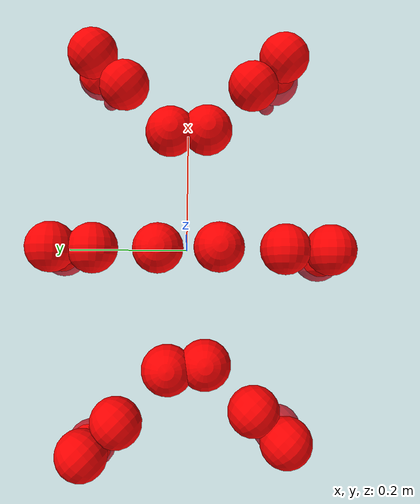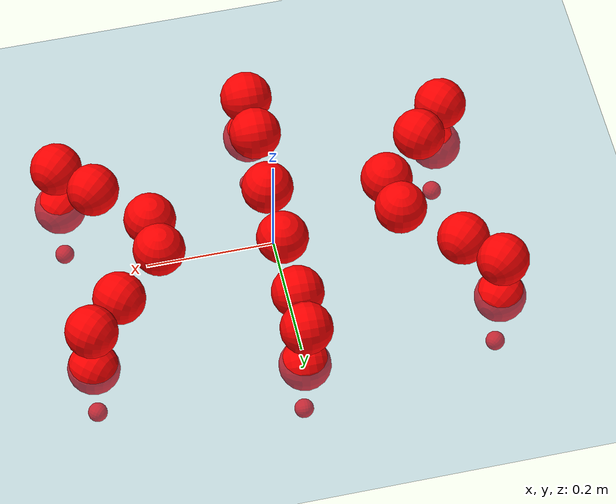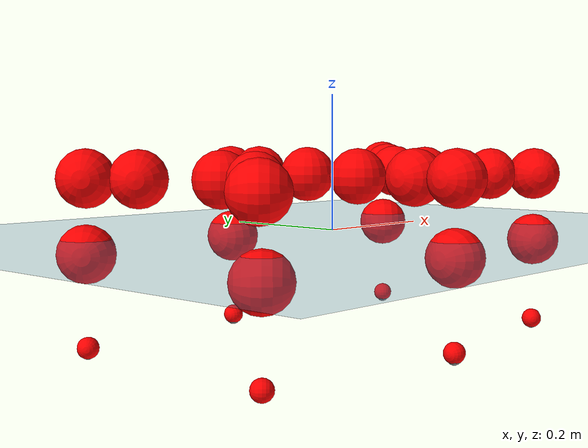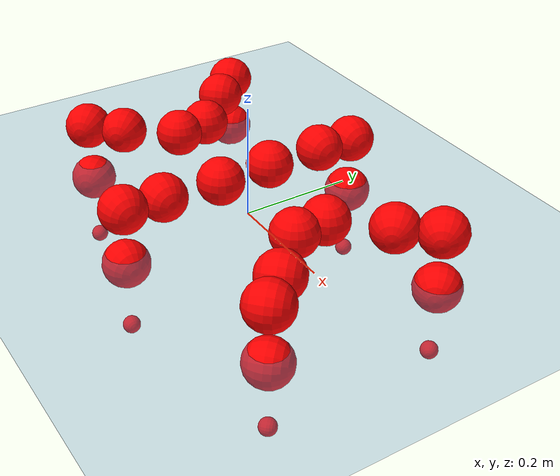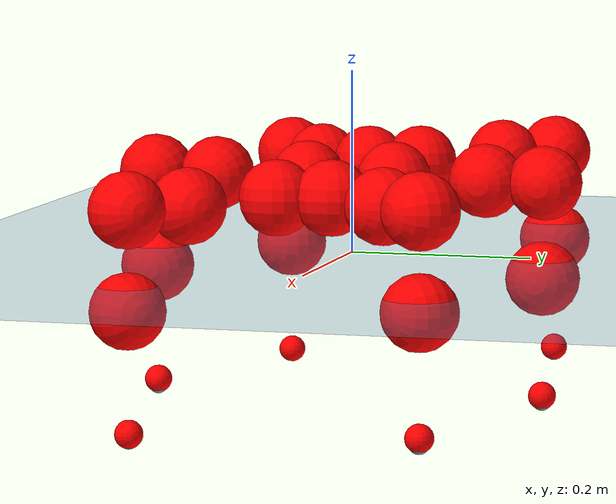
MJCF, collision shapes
<mujoco model="Golem">
  <compiler angle="radian" assetdir="assets" balanceinertia="true" inertiafromgeom="false"/>

  <option timestep="0.005" density="1.2" viscosity="2e-05"/>

  <size nkey="1"/>

  <visual>
    <quality shadowsize="8192"/>
    <map shadowclip="0.5"/>
  </visual>

  <default>
    <default class="/">
      <joint armature="0.01" damping="0.01" frictionloss="0.01"/>
      <geom contype="0" conaffinity="0" group="1" solref="-1000 -80"/>
      <site size="0.01 0.005 0.005" group="5"/>
      <general forcelimited="true" biastype="affine" gainprm="25" biasprm="0 -25 -0.5"/>
      <default class="visual">
        <geom type="mesh" group="2"/>
      </default>
      <default class="collision">
        <geom group="3"/>
      </default>
      <default class="foot">
        <geom size="0.01 0 0" condim="6" group="4" priority="1" solimp="0.015 1 0.01"/>
      </default>
      <default class="reward_collision_sphere">
        <geom group="5" rgba="1 0 0 1"/>
      </default>
    </default>
  </default>

  <asset>
    <texture type="skybox" colorspace="auto" name="//unnamed_texture_0" builtin="gradient" rgb1="0.95 0.95 0.95" rgb2="0.95 0.95 0.95" width="100" height="600"/>
    <texture type="2d" colorspace="auto" name="texplane" builtin="checker" rgb1="0.345 0.575 0.748" rgb2="0.345 0.575 0.748" markrgb="1 1 1" width="512" height="512"/>
    <material name="MatPlane" class="/" texture="texplane" texuniform="true" texrepeat="2 2" specular="0.9"/>
    <mesh name="body" class="/" file="body.stl" scale="0.001 0.001 0.001"/>
    <mesh name="coxa" class="/" file="coxa.stl" scale="0.001 0.001 0.001"/>
    <mesh name="femur" class="/" file="femur.stl" scale="0.001 0.001 0.001"/>
    <mesh name="tibia" class="/" file="tibia.stl" scale="0.001 0.001 0.001"/>
    <mesh name="tarsus" class="/" file="tarsus.stl" scale="0.001 0.001 0.001"/>
  </asset>

  <worldbody>
    <geom name="floor" class="/" size="100 100 0.125" type="plane" group="0" material="MatPlane"/>
    <light name="toplight_shadow" class="/" pos="0 0 5" dir="0.0990148 0.0990148 -0.990148" type="directional" ambient="0.04 0.04 0.04" diffuse="0.55 0.55 0.55" specular="0.12 0.12 0.12"/>
    <light name="toplight_fill" class="/" pos="0 0 5" dir="0.0990148 0.0990148 -0.990148" type="directional" castshadow="false" ambient="0.04 0.04 0.04" diffuse="0.3 0.3 0.3" specular="0.08 0.08 0.08"/>
    <body name="trunk" pos="-0.00267833 -0.000230266 0.00134591" quat="1 0.000379282 -0.000210271 5.32871e-05">
      <inertial pos="0.00290472 -0.00016362 -0.00184488" quat="0.999972 -0.00528115 0.00526007 -0.000555747" mass="3.95069" diaginertia="0.0253253 0.00112027 0.0268326"/>
      <joint name="//unnamed_joint_0" type="free"/>
      <geom name="//unnamed_geom_1" class="/" pos="0 0 0.0774931" quat="1 0 0 0" type="mesh" rgba="0.9 0.9 0.9 1" mesh="body"/>
      <site name="imu" class="/" pos="0.155258 -0.00116407 0.132915" size="0.0101774"/>
      <camera name="track" class="/" pos="0 -1.28678 0" quat="0.707107 0.707107 0 0" mode="trackcom"/>
      <camera name="ego_camera" class="/" pos="0.15587 0 0.121083" quat="-0.5 -0.5 0.5 0.5"/>
      <body name="coxa_RR" pos="-0.209161 -0.0547932 0.0776163" quat="0.382984 0.000137271 -0.000119503 -0.923755">
        <inertial pos="0.000829445 0.00112833 0.000680509" quat="0.999961 -0.00139784 0.00872011 -0.00069726" mass="0.217231" diaginertia="0.0249978 0.0011367 0.0276955"/>
        <joint name="coxa_joint_RR" class="/" pos="0 0 0" axis="0.0141633 -0.00128374 -0.999899" stiffness="0.00164383" range="-3.13774 3.10247" armature="0.00893589" damping="0.00580461" frictionloss="0.0105296"/>
        <geom name="//unnamed_geom_2" class="/" type="mesh" rgba="0.2 0.2 0.2 1" mesh="coxa"/>
        <geom name="//unnamed_geom_3" class="reward_collision_sphere" size="0.0407096" pos="-0.0359701 0 0"/>
        <body name="femur_RR" pos="0.0677193 0.00378676 -0.00611777" quat="0.49951 -0.500914 0.49974 0.499835">
          <inertial pos="-0.00228895 0.00211468 -0.00251528" quat="0.999995 0.00298017 2.45938e-05 0.000437035" mass="0.213194" diaginertia="0.0249054 0.00109042 0.0258662"/>
          <joint name="femur_joint_RR" class="/" pos="0 0 0" axis="-0.000242212 5.76702e-05 -1" range="-3.09528 3.1478" armature="0.00930984" damping="0.0235795" frictionloss="0.010988"/>
          <geom name="//unnamed_geom_4" class="/" type="mesh" rgba="0.9 0.9 0.9 1" mesh="femur"/>
          <geom name="//unnamed_geom_5" class="reward_collision_sphere" size="0.0407096"/>
          <body name="tibia_RR" pos="-0.00176824 -0.0679905 0.00187364" quat="0.000312711 0.999999 -0.000514005 -0.000980578">
            <inertial pos="-0.000191824 -0.00182738 0.000168963" quat="0.99998 -0.00303246 0.002534 0.00492594" mass="0.211257" diaginertia="0.0239825 0.00108195 0.0252702"/>
            <joint name="tibia_joint_RR" class="/" pos="0 0 0" axis="0.0114205 0.00428623 0.999926" stiffness="0.00965694" range="-3.11993 3.08313" armature="0.00953754" damping="0.00331894" frictionloss="0.010325"/>
            <geom name="//unnamed_geom_6" class="/" type="mesh" rgba="0.2 0.2 0.2 1" mesh="tibia"/>
            <geom name="//unnamed_geom_7" class="reward_collision_sphere" size="0.0407096"/>
            <body name="tarsus_RR" pos="0.106705 -0.00251889 -0.00320873" quat="0.999999 -0.000857898 -0.000244247 -0.000581888">
              <inertial pos="0.0745783 -7.10787e-05 -0.00136974" quat="0.499545 0.510426 0.498372 0.491472" mass="0.212175" diaginertia="0.0255055 0.00115715 0.0266004"/>
              <joint name="tarsus_joint_RR" class="/" pos="0 0 0" axis="0.00406638 -0.00312305 0.999987" stiffness="0.0130401" range="-3.1204 3.14511" armature="0.0109449" damping="0.0165447" frictionloss="0.0106922"/>
              <geom name="//unnamed_geom_8" class="/" type="mesh" rgba="0.9 0.9 0.9 1" mesh="tarsus"/>
              <geom name="foot_1" class="foot" size="0.00937403" pos="0.134288 0 0" quat="0 -0.707107 0 0.707107"/>
              <geom name="//unnamed_geom_10" class="reward_collision_sphere" size="0.0407096"/>
              <geom name="//unnamed_geom_11" class="reward_collision_sphere" size="0.0152661" pos="0.128893 0 0"/>
              <site name="foot_1" class="foot" pos="0.134288 0 0" quat="0 -0.707107 0 0.707107" size="0.0101774"/>
            </body>
          </body>
        </body>
      </body>
      <body name="coxa_RM" pos="0.000820962 -0.0868847 0.0794141" quat="0.707243 0.000747529 -0.000422332 -0.70697">
        <inertial pos="-0.000105118 0.000120704 -0.00231448" quat="0.999989 0.000333614 0.00273636 -0.00374399" mass="0.204831" diaginertia="0.0250072 0.00107946 0.024617"/>
        <joint name="coxa_joint_RM" class="/" pos="0 0 0" axis="-0.00391018 -0.00146149 -0.999991" range="-3.10168 3.14765" armature="0.00869996" damping="0.0235986" frictionloss="0.01037"/>
        <geom name="//unnamed_geom_12" class="/" type="mesh" rgba="0.2 0.2 0.2 1" mesh="coxa"/>
        <geom name="//unnamed_geom_13" class="reward_collision_sphere" size="0.0407096" pos="-0.0359701 0 0"/>
        <body name="femur_RM" pos="0.0688149 -0.00302104 0.00157584" quat="0.500014 -0.499976 0.499981 0.500029">
          <inertial pos="0.00241518 -0.00299083 0.00249351" quat="1 -8.68781e-05 -0.000304668 -9.94802e-05" mass="0.214371" diaginertia="0.0250106 0.00109948 0.0263226"/>
          <joint name="femur_joint_RM" class="/" pos="0 0 0" axis="-0.0015759 -0.0027979 -0.999995" stiffness="0.00701209" range="-3.12123 3.14923" armature="0.0106428" damping="0.00727281" frictionloss="0.0087863"/>
          <geom name="//unnamed_geom_14" class="/" type="mesh" rgba="0.9 0.9 0.9 1" mesh="femur"/>
          <geom name="//unnamed_geom_15" class="reward_collision_sphere" size="0.0407096"/>
          <body name="tibia_RM" pos="-0.000771027 -0.0710093 -0.000695557" quat="3.30475e-05 1 0.000292904 -0.000590389">
            <inertial pos="-0.00317498 -0.00244638 -0.000604736" quat="0.999952 0.000689246 -0.00657797 -0.00725314" mass="0.206684" diaginertia="0.0241465 0.00108952 0.0264087"/>
            <joint name="tibia_joint_RM" class="/" pos="0 0 0" axis="-0.00698521 -0.00883072 0.999937" range="-3.10628 3.19162" armature="0.0114504" damping="0.0128434" frictionloss="0.00994723"/>
            <geom name="//unnamed_geom_16" class="/" type="mesh" rgba="0.2 0.2 0.2 1" mesh="tibia"/>
            <geom name="//unnamed_geom_17" class="reward_collision_sphere" size="0.0407096"/>
            <body name="tarsus_RM" pos="0.10658 0.000670042 0.00304836" quat="1 -0.000281143 -6.37665e-05 0.00065889">
              <inertial pos="0.0747177 -0.00137303 0.00314406" quat="0.500285 0.498317 0.500045 0.501349" mass="0.21176" diaginertia="0.0244898 0.0011067 0.0246966"/>
              <joint name="tarsus_joint_RM" class="/" pos="0 0 0" axis="0.012234 -0.00305179 0.999921" range="-3.12011 3.10516" armature="0.0114054" damping="0.0179461" frictionloss="0.0102742"/>
              <geom name="//unnamed_geom_18" class="/" type="mesh" rgba="0.9 0.9 0.9 1" mesh="tarsus"/>
              <geom name="foot_2" class="foot" size="0.0112425" pos="0.134288 0 0" quat="0 -0.707107 0 0.707107"/>
              <geom name="//unnamed_geom_20" class="reward_collision_sphere" size="0.0407096"/>
              <geom name="//unnamed_geom_21" class="reward_collision_sphere" size="0.0152661" pos="0.128893 0 0"/>
              <site name="foot_2" class="foot" pos="0.134288 0 0" quat="0 -0.707107 0 0.707107" size="0.0101774"/>
            </body>
          </body>
        </body>
      </body>
      <body name="coxa_RF" pos="0.215513 -0.0564445 0.0795733" quat="0.92393 0.00088674 0.000114056 -0.382559">
        <inertial pos="0.000196578 0.00216896 0.000722747" quat="0.999931 0.000838295 -0.00577565 0.0101903" mass="0.210562" diaginertia="0.0233843 0.00110253 0.024606"/>
        <joint name="coxa_joint_RF" class="/" pos="0 0 0" axis="-0.000214965 0.00801936 -0.999968" range="-3.18385 3.14398" armature="0.0096673" damping="0.0193435" frictionloss="0.0112417"/>
        <geom name="//unnamed_geom_22" class="/" type="mesh" rgba="0.2 0.2 0.2 1" mesh="coxa"/>
        <geom name="//unnamed_geom_23" class="reward_collision_sphere" size="0.0407096" pos="-0.0359701 0 0"/>
        <body name="femur_RF" pos="0.0699367 0.000397084 -0.00234505" quat="0.499999 -0.499971 0.500009 0.50002">
          <inertial pos="-0.00104502 -0.00286824 0.000719816" quat="0.999993 0.00264663 0.0002644 -0.00273077" mass="0.215498" diaginertia="0.0251497 0.00109608 0.0259633"/>
          <joint name="femur_joint_RF" class="/" pos="0 0 0" axis="6.98937e-05 -0.00102762 -0.999999" stiffness="0.0114559" range="-3.08445 3.15546" armature="0.0113324" damping="0.00124084" frictionloss="0.0111402"/>
          <geom name="//unnamed_geom_24" class="/" type="mesh" rgba="0.9 0.9 0.9 1" mesh="femur"/>
          <geom name="//unnamed_geom_25" class="reward_collision_sphere" size="0.0407096"/>
          <body name="tibia_RF" pos="-0.000205159 -0.0703682 -0.00144923" quat="-9.41275e-05 1 0.000109734 0.000314145">
            <inertial pos="0.000746945 -0.00174253 -0.00035384" quat="0.999997 0.000907538 0.000619693 0.00199489" mass="0.206175" diaginertia="0.023863 0.00107716 0.0252879"/>
            <joint name="tibia_joint_RF" class="/" pos="0 0 0" axis="-0.00300947 -0.0119117 0.999925" range="-3.09906 3.13218" armature="0.00996047" damping="0.00319718" frictionloss="0.0113389"/>
            <geom name="//unnamed_geom_26" class="/" type="mesh" rgba="0.2 0.2 0.2 1" mesh="tibia"/>
            <geom name="//unnamed_geom_27" class="reward_collision_sphere" size="0.0407096"/>
            <body name="tarsus_RF" pos="0.105597 -7.76511e-05 0.000314993" quat="1 0.000305819 0.000140203 0.000683363">
              <inertial pos="0.0721398 -0.00233981 0.00088029" quat="0.49414 0.503143 0.494268 0.508303" mass="0.208859" diaginertia="0.0239924 0.00108854 0.0256463"/>
              <joint name="tarsus_joint_RF" class="/" pos="0 0 0" axis="0.0119075 0.00302871 0.999925" range="-3.1835 3.14189" armature="0.0108225" damping="0" frictionloss="0.0100441"/>
              <geom name="//unnamed_geom_28" class="/" type="mesh" rgba="0.9 0.9 0.9 1" mesh="tarsus"/>
              <geom name="foot_3" class="foot" size="0.0103538" pos="0.134288 0 0" quat="0 -0.707107 0 0.707107"/>
              <geom name="//unnamed_geom_30" class="reward_collision_sphere" size="0.0407096"/>
              <geom name="//unnamed_geom_31" class="reward_collision_sphere" size="0.0152661" pos="0.128893 0 0"/>
              <site name="foot_3" class="foot" pos="0.134288 0 0" quat="0 -0.707107 0 0.707107" size="0.0101774"/>
            </body>
          </body>
        </body>
      </body>
      <body name="coxa_LR" pos="-0.217545 0.0544778 0.078419" quat="0.383687 -0.000318618 -0.000140381 0.923463">
        <inertial pos="0.0030202 -0.000715108 0.000636945" quat="0.999984 0.000882322 0.0053914 0.00142794" mass="0.205422" diaginertia="0.0251214 0.0011208 0.0260748"/>
        <joint name="coxa_joint_LR" class="/" pos="0 0 0" axis="0.0118076 0.0146121 -0.999824" stiffness="0.00906184" range="-3.12133 3.19119" armature="0.0106624" damping="0.00632037" frictionloss="0.0115542"/>
        <geom name="//unnamed_geom_32" class="/" type="mesh" rgba="0.2 0.2 0.2 1" mesh="coxa"/>
        <geom name="//unnamed_geom_33" class="reward_collision_sphere" size="0.0407096" pos="-0.0359701 0 0"/>
        <body name="femur_LR" pos="0.0753576 0.00174966 0.00108434" quat="0.500332 -0.499476 0.500269 0.499922">
          <inertial pos="-0.000238555 0.000891664 -0.000858504" quat="0.999999 0.0012257 -0.000195226 0.000281759" mass="0.215375" diaginertia="0.0263628 0.00113443 0.0259553"/>
          <joint name="femur_joint_LR" class="/" pos="0 0 0" axis="0.00272014 -0.00634524 0.999976" range="-3.17164 3.11522" armature="0.00875579" damping="0.000688615" frictionloss="0.00997058"/>
          <geom name="//unnamed_geom_34" class="/" type="mesh" rgba="0.9 0.9 0.9 1" mesh="femur"/>
          <geom name="//unnamed_geom_35" class="reward_collision_sphere" size="0.0407096"/>
          <body name="tibia_LR" pos="-0.00122615 -0.0710229 -0.00169915" quat="2.4038e-05 1 -6.31471e-05 1.31789e-05">
            <inertial pos="0.000346968 0.000897624 5.47532e-05" quat="0.99992 -0.00875442 0.00625525 0.00666378" mass="0.203894" diaginertia="0.0236457 0.00111416 0.0259663"/>
            <joint name="tibia_joint_LR" class="/" pos="0 0 0" axis="0.00130494 -0.00203521 -0.999997" stiffness="0.00664146" range="-3.14622 3.14362" armature="0.0104402" damping="0.0214225" frictionloss="0.011015"/>
            <geom name="//unnamed_geom_36" class="/" type="mesh" rgba="0.2 0.2 0.2 1" mesh="tibia"/>
            <geom name="//unnamed_geom_37" class="reward_collision_sphere" size="0.0407096"/>
            <body name="tarsus_LR" pos="0.10287 0.000784909 -0.0017468" quat="1 -0.000579505 0.000593674 0.000367015">
              <inertial pos="0.0682155 0.00319219 -0.00104948" quat="0.500934 0.497807 0.501451 0.4998" mass="0.20465" diaginertia="0.024386 0.00112767 0.026606"/>
              <joint name="tarsus_joint_LR" class="/" pos="0 0 0" axis="-0.00118744 0.00416885 -0.999991" range="-3.16257 3.12952" armature="0.00995247" damping="0.0333367" frictionloss="0.0105151"/>
              <geom name="//unnamed_geom_38" class="/" type="mesh" rgba="0.9 0.9 0.9 1" mesh="tarsus"/>
              <geom name="foot_4" class="foot" size="0.0103199" pos="0.134288 0 0" quat="0.707107 0 -0.707107 0"/>
              <geom name="//unnamed_geom_40" class="reward_collision_sphere" size="0.0407096"/>
              <geom name="//unnamed_geom_41" class="reward_collision_sphere" size="0.0152661" pos="0.128893 0 0"/>
              <site name="foot_4" class="foot" pos="0.134288 0 0" quat="0.707107 0 -0.707107 0" size="0.0101774"/>
            </body>
          </body>
        </body>
      </body>
      <body name="coxa_LM" pos="-0.00160215 0.0821187 0.0803915" quat="0.707427 -1.53746e-05 0.000214433 0.706787">
        <inertial pos="0.00228736 0.00283143 0.00316531" quat="0.999922 -0.00274184 0.000614324 0.0121845" mass="0.210215" diaginertia="0.0250177 0.00106764 0.026877"/>
        <joint name="coxa_joint_LM" class="/" pos="0 0 0" axis="-0.000784818 -0.00250057 -0.999997" range="-3.08475 3.1024" armature="0.0102103" damping="0.00826951" frictionloss="0.0106237"/>
        <geom name="//unnamed_geom_42" class="/" type="mesh" rgba="0.2 0.2 0.2 1" mesh="coxa"/>
        <geom name="//unnamed_geom_43" class="reward_collision_sphere" size="0.0407096" pos="-0.0359701 0 0"/>
        <body name="femur_LM" pos="0.0670154 0.000914275 0.000554565" quat="0.499948 -0.500028 0.49997 0.500055">
          <inertial pos="0.00131538 -0.00155178 -0.00168314" quat="0.999989 0.0024796 -0.000430621 0.00402352" mass="0.210571" diaginertia="0.0244073 0.00111953 0.0266061"/>
          <joint name="femur_joint_LM" class="/" pos="0 0 0" axis="-0.00353825 -0.0043706 0.999984" range="-3.12605 3.15079" armature="0.0114247" damping="0.0136904" frictionloss="0.0110157"/>
          <geom name="//unnamed_geom_44" class="/" type="mesh" rgba="0.9 0.9 0.9 1" mesh="femur"/>
          <geom name="//unnamed_geom_45" class="reward_collision_sphere" size="0.0407096"/>
          <body name="tibia_LM" pos="0.000363491 -0.0663828 -0.00122665" quat="-0.000368803 0.999999 -0.00029254 -0.00132212">
            <inertial pos="0.00182188 0.00218172 -0.000901946" quat="0.999907 0.0082531 0.00927698 0.00562658" mass="0.224079" diaginertia="0.0257641 0.00115856 0.0274854"/>
            <joint name="tibia_joint_LM" class="/" pos="0 0 0" axis="-9.21104e-05 0.00897822 -0.99996" stiffness="0.0133727" range="-3.12781 3.12913" armature="0.0103448" damping="0.0147434" frictionloss="0.0106271"/>
            <geom name="//unnamed_geom_46" class="/" type="mesh" rgba="0.2 0.2 0.2 1" mesh="tibia"/>
            <geom name="//unnamed_geom_47" class="reward_collision_sphere" size="0.0407096"/>
            <body name="tarsus_LM" pos="0.104371 -0.00189941 0.000922373" quat="1 0.00020038 3.19783e-05 6.13317e-05">
              <inertial pos="0.0717023 0.000858794 0.000736738" quat="0.500701 0.493007 0.510043 0.496083" mass="0.204379" diaginertia="0.0253612 0.00111583 0.0263321"/>
              <joint name="tarsus_joint_LM" class="/" pos="0 0 0" axis="-0.00286699 0.00123893 -0.999995" range="-3.19529 3.12259" armature="0.00985153" damping="0.0171108" frictionloss="0.0101748"/>
              <geom name="//unnamed_geom_48" class="/" type="mesh" rgba="0.9 0.9 0.9 1" mesh="tarsus"/>
              <geom name="foot_5" class="foot" size="0.0110705" pos="0.134288 0 0" quat="0.707107 0 -0.707107 0"/>
              <geom name="//unnamed_geom_50" class="reward_collision_sphere" size="0.0407096"/>
              <geom name="//unnamed_geom_51" class="reward_collision_sphere" size="0.0152661" pos="0.128893 0 0"/>
              <site name="foot_5" class="foot" pos="0.134288 0 0" quat="0.707107 0 -0.707107 0" size="0.0101774"/>
            </body>
          </body>
        </body>
      </body>
      <body name="coxa_LF" pos="0.212551 0.0534371 0.0806747" quat="0.923987 0.000346004 4.66399e-05 0.382424">
        <inertial pos="0.000373894 -0.000690979 0.000961789" quat="0.999926 0.00360017 0.00865609 -0.00778459" mass="0.2032" diaginertia="0.0245336 0.00110146 0.0250133"/>
        <joint name="coxa_joint_LF" class="/" pos="0 0 0" axis="-0.00121981 0.0029422 -0.999995" range="-3.10394 3.15369" armature="0.0105142" damping="0.0319738" frictionloss="0.00987896"/>
        <geom name="//unnamed_geom_52" class="/" type="mesh" rgba="0.2 0.2 0.2 1" mesh="coxa"/>
        <geom name="//unnamed_geom_53" class="reward_collision_sphere" size="0.0407096" pos="-0.0359701 0 0"/>
        <body name="femur_LF" pos="0.0714471 -9.28659e-06 0.00250623" quat="0.499052 -0.50064 0.500702 0.499605">
          <inertial pos="-0.000117808 -0.000403355 -0.000647074" quat="0.999966 -0.00816077 0.00111665 0.000865739" mass="0.202665" diaginertia="0.0243444 0.00106498 0.0260065"/>
          <joint name="femur_joint_LF" class="/" pos="0 0 0" axis="-0.00603901 -0.00339245 0.999976" range="-3.1225 3.13076" armature="0.0104892" damping="0" frictionloss="0.0101617"/>
          <geom name="//unnamed_geom_54" class="/" type="mesh" rgba="0.9 0.9 0.9 1" mesh="femur"/>
          <geom name="//unnamed_geom_55" class="reward_collision_sphere" size="0.0407096"/>
          <body name="tibia_LF" pos="-0.00290149 -0.0734067 0.000112222" quat="0.000418905 1 0.000172599 -0.00045499">
            <inertial pos="0.00178375 -0.00301547 -0.000335875" quat="0.999987 0.00156611 0.00272238 -0.00394782" mass="0.206655" diaginertia="0.0257573 0.00109477 0.0259562"/>
            <joint name="tibia_joint_LF" class="/" pos="0 0 0" axis="0.00055493 -0.000732802 -1" range="-3.1883 3.19187" armature="0.00971544" damping="0" frictionloss="0.0102479"/>
            <geom name="//unnamed_geom_56" class="/" type="mesh" rgba="0.2 0.2 0.2 1" mesh="tibia"/>
            <geom name="//unnamed_geom_57" class="reward_collision_sphere" size="0.0407096"/>
            <body name="tarsus_LF" pos="0.103446 0.00105919 0.001051" quat="0.999999 0.00119368 0.000330595 0.000370226">
              <inertial pos="0.0735172 -0.00185771 -0.00122526" quat="0.501172 0.498755 0.499311 0.500758" mass="0.201524" diaginertia="0.0236327 0.00105512 0.0251706"/>
              <joint name="tarsus_joint_LF" class="/" pos="0 0 0" axis="0.00010847 0.000732908 -1" stiffness="0.00515051" range="-3.1352 3.12669" armature="0.0100833" damping="0.0313208" frictionloss="0.00911363"/>
              <geom name="//unnamed_geom_58" class="/" type="mesh" rgba="0.9 0.9 0.9 1" mesh="tarsus"/>
              <geom name="foot_6" class="foot" size="0.0112801" pos="0.134288 0 0" quat="0.707107 0 -0.707107 0"/>
              <geom name="//unnamed_geom_60" class="reward_collision_sphere" size="0.0407096"/>
              <geom name="//unnamed_geom_61" class="reward_collision_sphere" size="0.0152661" pos="0.128893 0 0"/>
              <site name="foot_6" class="foot" pos="0.134288 0 0" quat="0.707107 0 -0.707107 0" size="0.0101774"/>
            </body>
          </body>
        </body>
      </body>
    </body>
  </worldbody>

  <contact>
    <pair class="/" geom1="floor" geom2="foot_1" name="//unnamed_contact_0"/>
    <pair class="/" geom1="floor" geom2="foot_2" name="//unnamed_contact_1"/>
    <pair class="/" geom1="floor" geom2="foot_3" name="//unnamed_contact_2"/>
    <pair class="/" geom1="floor" geom2="foot_4" name="//unnamed_contact_3"/>
    <pair class="/" geom1="floor" geom2="foot_5" name="//unnamed_contact_4"/>
    <pair class="/" geom1="floor" geom2="foot_6" name="//unnamed_contact_5"/>
  </contact>

  <actuator>
    <general name="coxa_joint_RR" class="/" joint="coxa_joint_RR" forcerange="-8.00362 8.00362" gainprm="24.8702" biasprm="0 -24.8702 -0.532661"/>
    <general name="femur_joint_RR" class="/" joint="femur_joint_RR" forcerange="-7.79774 7.79774" gainprm="24.8702" biasprm="0 -24.8702 -0.532661"/>
    <general name="tibia_joint_RR" class="/" joint="tibia_joint_RR" forcerange="-7.12908 7.12908" gainprm="24.8702" biasprm="0 -24.8702 -0.532661"/>
    <general name="tarsus_joint_RR" class="/" joint="tarsus_joint_RR" forcerange="-7.26406 7.26406" gainprm="24.8702" biasprm="0 -24.8702 -0.532661"/>
    <general name="coxa_joint_RM" class="/" joint="coxa_joint_RM" forcerange="-7.61483 7.61483" gainprm="24.8702" biasprm="0 -24.8702 -0.532661"/>
    <general name="femur_joint_RM" class="/" joint="femur_joint_RM" forcerange="-7.87526 7.87526" gainprm="24.8702" biasprm="0 -24.8702 -0.532661"/>
    <general name="tibia_joint_RM" class="/" joint="tibia_joint_RM" forcerange="-7.67744 7.67744" gainprm="24.8702" biasprm="0 -24.8702 -0.532661"/>
    <general name="tarsus_joint_RM" class="/" joint="tarsus_joint_RM" forcerange="-7.58475 7.58475" gainprm="24.8702" biasprm="0 -24.8702 -0.532661"/>
    <general name="coxa_joint_RF" class="/" joint="coxa_joint_RF" forcerange="-7.5015 7.5015" gainprm="24.8702" biasprm="0 -24.8702 -0.532661"/>
    <general name="femur_joint_RF" class="/" joint="femur_joint_RF" forcerange="-6.78551 6.78551" gainprm="24.8702" biasprm="0 -24.8702 -0.532661"/>
    <general name="tibia_joint_RF" class="/" joint="tibia_joint_RF" forcerange="-7.17606 7.17606" gainprm="24.8702" biasprm="0 -24.8702 -0.532661"/>
    <general name="tarsus_joint_RF" class="/" joint="tarsus_joint_RF" forcerange="-7.3443 7.3443" gainprm="24.8702" biasprm="0 -24.8702 -0.532661"/>
    <general name="coxa_joint_LR" class="/" joint="coxa_joint_LR" forcerange="-7.54549 7.54549" gainprm="24.8702" biasprm="0 -24.8702 -0.532661"/>
    <general name="femur_joint_LR" class="/" joint="femur_joint_LR" forcerange="-7.17487 7.17487" gainprm="24.8702" biasprm="0 -24.8702 -0.532661"/>
    <general name="tibia_joint_LR" class="/" joint="tibia_joint_LR" forcerange="-6.88137 6.88137" gainprm="24.8702" biasprm="0 -24.8702 -0.532661"/>
    <general name="tarsus_joint_LR" class="/" joint="tarsus_joint_LR" forcerange="-7.17564 7.17564" gainprm="24.8702" biasprm="0 -24.8702 -0.532661"/>
    <general name="coxa_joint_LM" class="/" joint="coxa_joint_LM" forcerange="-7.29678 7.29678" gainprm="24.8702" biasprm="0 -24.8702 -0.532661"/>
    <general name="femur_joint_LM" class="/" joint="femur_joint_LM" forcerange="-7.27896 7.27896" gainprm="24.8702" biasprm="0 -24.8702 -0.532661"/>
    <general name="tibia_joint_LM" class="/" joint="tibia_joint_LM" forcerange="-7.36823 7.36823" gainprm="24.8702" biasprm="0 -24.8702 -0.532661"/>
    <general name="tarsus_joint_LM" class="/" joint="tarsus_joint_LM" forcerange="-6.66222 6.66222" gainprm="24.8702" biasprm="0 -24.8702 -0.532661"/>
    <general name="coxa_joint_LF" class="/" joint="coxa_joint_LF" forcerange="-7.41049 7.41049" gainprm="24.8702" biasprm="0 -24.8702 -0.532661"/>
    <general name="femur_joint_LF" class="/" joint="femur_joint_LF" forcerange="-7.40403 7.40403" gainprm="24.8702" biasprm="0 -24.8702 -0.532661"/>
    <general name="tibia_joint_LF" class="/" joint="tibia_joint_LF" forcerange="-7.55122 7.55122" gainprm="24.8702" biasprm="0 -24.8702 -0.532661"/>
    <general name="tarsus_joint_LF" class="/" joint="tarsus_joint_LF" forcerange="-7.53547 7.53547" gainprm="24.8702" biasprm="0 -24.8702 -0.532661"/>
  </actuator>

  <sensor>
    <gyro site="imu" name="imu_angular_velocity"/>
    <velocimeter site="imu" name="imu_linear_velocity"/>
    <framelinvel objtype="site" objname="foot_1" name="foot_1_global_linear_velocity"/>
    <framelinvel objtype="site" objname="foot_2" name="foot_2_global_linear_velocity"/>
    <framelinvel objtype="site" objname="foot_3" name="foot_3_global_linear_velocity"/>
    <framelinvel objtype="site" objname="foot_4" name="foot_4_global_linear_velocity"/>
    <framelinvel objtype="site" objname="foot_5" name="foot_5_global_linear_velocity"/>
    <framelinvel objtype="site" objname="foot_6" name="foot_6_global_linear_velocity"/>
  </sensor>

  <keyframe>
    <key name="home" qpos="0 0 0.1457 1 0 0 0 0 0 0 0 0 0 0 0 0 0 0 0 0 0 0 0 0 0 0 0 0 0 0 0"/>
  </keyframe>
</mujoco>
